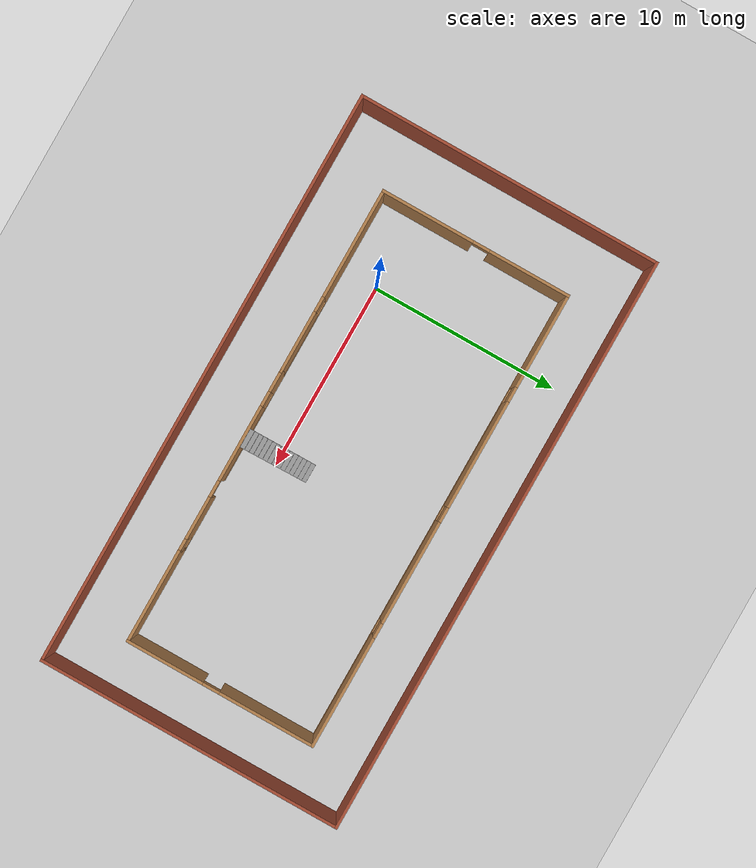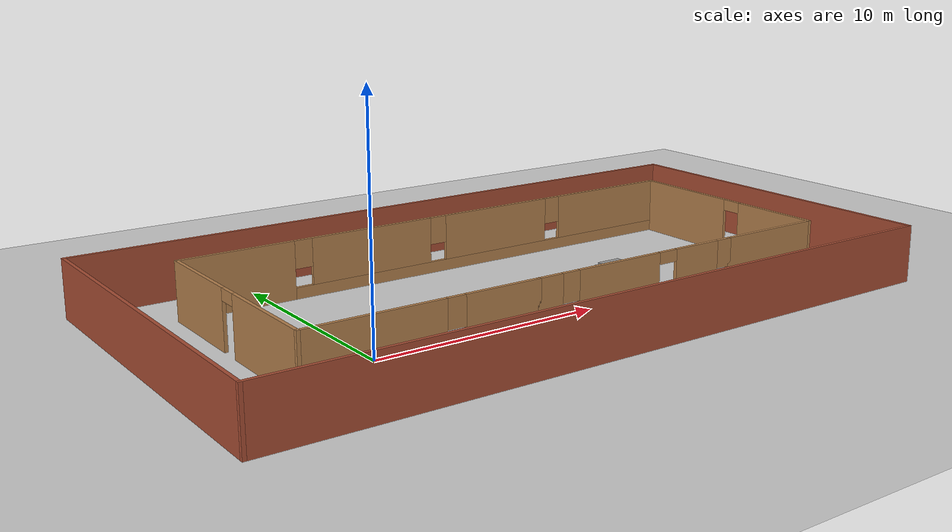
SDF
<sdf version="1.7">
 <world name="default">
  <light name="sun" type="directional">
   <pose>0 0 10 0 -0 0</pose>
   <diffuse>0.8 0.8 0.8 1</diffuse>
   <specular>0.2 0.2 0.2 1</specular>
   <attenuation>
    <range>1000</range>
    <constant>0.9</constant>
    <linear>0.01</linear>
    <quadratic>0.001</quadratic>
   </attenuation>
   <direction>-0.5 0.1 -0.9</direction>
   <spot><inner_angle>0</inner_angle><outer_angle>0</outer_angle><falloff>0</falloff></spot>
  </light>
  <model name="ground_plane">
   <static>1</static>
   <link name="link">
    <collision name="collision">
     <geometry><plane><normal>0 0 1</normal><size>100 100</size></plane></geometry>
     <surface><friction><ode><mu>100</mu><mu2>50</mu2></ode></friction></surface>
    </collision>
    <visual name="visual">
     <cast_shadows>0</cast_shadows>
     <geometry><plane><normal>0 0 1</normal><size>100 100</size></plane></geometry>
     <material>
      <script><uri>file://media/materials/scripts/gazebo.material</uri><name>Gazebo/Grey</name></script>
     </material>
    </visual>
   </link>
  </model>
  <gravity>0 0 -9.8</gravity>
  <magnetic_field>6e-06 2.3e-05 -4.2e-05</magnetic_field>
  <atmosphere type="adiabatic"/>
  <physics type="ode">
   <max_step_size>0.001</max_step_size>
   <real_time_factor>1</real_time_factor>
   <real_time_update_rate>1000</real_time_update_rate>
  </physics>
  <scene><ambient>0.4 0.4 0.4 1</ambient><background>0.7 0.7 0.7 1</background><shadows>1</shadows></scene>
  <spherical_coordinates>
   <surface_model>EARTH_WGS84</surface_model>
   <latitude_deg>0</latitude_deg>
   <longitude_deg>0</longitude_deg>
   <elevation>0</elevation>
   <heading_deg>0</heading_deg>
  </spherical_coordinates>
  <model name="fastrlap">
   <pose>8.08095 3.05105 0 0 -0 0</pose>
   <link name="Stairs_1">
    <visual name="Stairs_1_Visual_0">
     <pose>1.45814 -1.47543 0.083333 0 -0 0</pose>
     <geometry><box><size>1 0.233333 0.166667</size></box></geometry>
     <material>
      <script><uri>file://media/materials/scripts/gazebo.material</uri><name>Gazebo/Grey</name></script>
      <ambient>1 1 1 1</ambient>
     </material>
     <meta><layer>0</layer></meta>
    </visual>
    <collision name="Stairs_1_Collision_0">
     <geometry><box><size>1 0.233333 0.166667</size></box></geometry>
     <pose>1.45814 -1.47543 0.083333 0 -0 0</pose>
    </collision>
    <visual name="Stairs_1_Visual_1">
     <pose>1.45814 -1.70876 0.25 0 -0 0</pose>
     <geometry><box><size>1 0.233333 0.166667</size></box></geometry>
     <material>
      <script><uri>file://media/materials/scripts/gazebo.material</uri><name>Gazebo/Grey</name></script>
      <ambient>1 1 1 1</ambient>
     </material>
     <meta><layer>0</layer></meta>
    </visual>
    <collision name="Stairs_1_Collision_1">
     <geometry><box><size>1 0.233333 0.166667</size></box></geometry>
     <pose>1.45814 -1.70876 0.25 0 -0 0</pose>
    </collision>
    <visual name="Stairs_1_Visual_2">
     <pose>1.45814 -1.9421 0.416667 0 -0 0</pose>
     <geometry><box><size>1 0.233333 0.166667</size></box></geometry>
     <material>
      <script><uri>file://media/materials/scripts/gazebo.material</uri><name>Gazebo/Grey</name></script>
      <ambient>1 1 1 1</ambient>
     </material>
     <meta><layer>0</layer></meta>
    </visual>
    <collision name="Stairs_1_Collision_2">
     <geometry><box><size>1 0.233333 0.166667</size></box></geometry>
     <pose>1.45814 -1.9421 0.416667 0 -0 0</pose>
    </collision>
    <visual name="Stairs_1_Visual_3">
     <pose>1.45814 -2.17543 0.583333 0 -0 0</pose>
     <geometry><box><size>1 0.233333 0.166667</size></box></geometry>
     <material>
      <script><uri>file://media/materials/scripts/gazebo.material</uri><name>Gazebo/Grey</name></script>
      <ambient>1 1 1 1</ambient>
     </material>
     <meta><layer>0</layer></meta>
    </visual>
    <collision name="Stairs_1_Collision_3">
     <geometry><box><size>1 0.233333 0.166667</size></box></geometry>
     <pose>1.45814 -2.17543 0.583333 0 -0 0</pose>
    </collision>
    <visual name="Stairs_1_Visual_4">
     <pose>1.45814 -2.40876 0.75 0 -0 0</pose>
     <geometry><box><size>1 0.233333 0.166667</size></box></geometry>
     <material>
      <script><uri>file://media/materials/scripts/gazebo.material</uri><name>Gazebo/Grey</name></script>
      <ambient>1 1 1 1</ambient>
     </material>
     <meta><layer>0</layer></meta>
    </visual>
    <collision name="Stairs_1_Collision_4">
     <geometry><box><size>1 0.233333 0.166667</size></box></geometry>
     <pose>1.45814 -2.40876 0.75 0 -0 0</pose>
    </collision>
    <visual name="Stairs_1_Visual_5">
     <pose>1.45814 -2.6421 0.916667 0 -0 0</pose>
     <geometry><box><size>1 0.233333 0.166667</size></box></geometry>
     <material>
      <script><uri>file://media/materials/scripts/gazebo.material</uri><name>Gazebo/Grey</name></script>
      <ambient>1 1 1 1</ambient>
     </material>
     <meta><layer>0</layer></meta>
    </visual>
    <collision name="Stairs_1_Collision_5">
     <geometry><box><size>1 0.233333 0.166667</size></box></geometry>
     <pose>1.45814 -2.6421 0.916667 0 -0 0</pose>
    </collision>
    <visual name="Stairs_1_Visual_6">
     <pose>1.45814 -2.87543 1.08333 0 -0 0</pose>
     <geometry><box><size>1 0.233333 0.166667</size></box></geometry>
     <material>
      <script><uri>file://media/materials/scripts/gazebo.material</uri><name>Gazebo/Grey</name></script>
      <ambient>1 1 1 1</ambient>
     </material>
     <meta><layer>0</layer></meta>
    </visual>
    <collision name="Stairs_1_Collision_6">
     <geometry><box><size>1 0.233333 0.166667</size></box></geometry>
     <pose>1.45814 -2.87543 1.08333 0 -0 0</pose>
    </collision>
    <visual name="Stairs_1_Visual_7">
     <pose>1.45814 -3.10876 1.25 0 -0 0</pose>
     <geometry><box><size>1 0.233333 0.166667</size></box></geometry>
     <material>
      <script><uri>file://media/materials/scripts/gazebo.material</uri><name>Gazebo/Grey</name></script>
      <ambient>1 1 1 1</ambient>
     </material>
     <meta><layer>0</layer></meta>
    </visual>
    <collision name="Stairs_1_Collision_7">
     <geometry><box><size>1 0.233333 0.166667</size></box></geometry>
     <pose>1.45814 -3.10876 1.25 0 -0 0</pose>
    </collision>
    <visual name="Stairs_1_Visual_8">
     <pose>1.45814 -3.3421 1.41667 0 -0 0</pose>
     <geometry><box><size>1 0.233333 0.166667</size></box></geometry>
     <material>
      <script><uri>file://media/materials/scripts/gazebo.material</uri><name>Gazebo/Grey</name></script>
      <ambient>1 1 1 1</ambient>
     </material>
     <meta><layer>0</layer></meta>
    </visual>
    <collision name="Stairs_1_Collision_8">
     <geometry><box><size>1 0.233333 0.166667</size></box></geometry>
     <pose>1.45814 -3.3421 1.41667 0 -0 0</pose>
    </collision>
    <visual name="Stairs_1_Visual_9">
     <pose>1.45814 -3.57543 1.58333 0 -0 0</pose>
     <geometry><box><size>1 0.233333 0.166667</size></box></geometry>
     <material>
      <script><uri>file://media/materials/scripts/gazebo.material</uri><name>Gazebo/Grey</name></script>
      <ambient>1 1 1 1</ambient>
     </material>
     <meta><layer>0</layer></meta>
    </visual>
    <collision name="Stairs_1_Collision_9">
     <geometry><box><size>1 0.233333 0.166667</size></box></geometry>
     <pose>1.45814 -3.57543 1.58333 0 -0 0</pose>
    </collision>
    <visual name="Stairs_1_Visual_10">
     <pose>1.45814 -3.80876 1.75 0 -0 0</pose>
     <geometry><box><size>1 0.233333 0.166667</size></box></geometry>
     <material>
      <script><uri>file://media/materials/scripts/gazebo.material</uri><name>Gazebo/Grey</name></script>
      <ambient>1 1 1 1</ambient>
     </material>
     <meta><layer>0</layer></meta>
    </visual>
    <collision name="Stairs_1_Collision_10">
     <geometry><box><size>1 0.233333 0.166667</size></box></geometry>
     <pose>1.45814 -3.80876 1.75 0 -0 0</pose>
    </collision>
    <visual name="Stairs_1_Visual_11">
     <pose>1.45814 -4.0421 1.91667 0 -0 0</pose>
     <geometry><box><size>1 0.233333 0.166667</size></box></geometry>
     <material>
      <script><uri>file://media/materials/scripts/gazebo.material</uri><name>Gazebo/Grey</name></script>
      <ambient>1 1 1 1</ambient>
     </material>
     <meta><layer>0</layer></meta>
    </visual>
    <collision name="Stairs_1_Collision_11">
     <geometry><box><size>1 0.233333 0.166667</size></box></geometry>
     <pose>1.45814 -4.0421 1.91667 0 -0 0</pose>
    </collision>
    <visual name="Stairs_1_Visual_12">
     <pose>1.45814 -4.27543 2.08333 0 -0 0</pose>
     <geometry><box><size>1 0.233333 0.166667</size></box></geometry>
     <material>
      <script><uri>file://media/materials/scripts/gazebo.material</uri><name>Gazebo/Grey</name></script>
      <ambient>1 1 1 1</ambient>
     </material>
     <meta><layer>0</layer></meta>
    </visual>
    <collision name="Stairs_1_Collision_12">
     <geometry><box><size>1 0.233333 0.166667</size></box></geometry>
     <pose>1.45814 -4.27543 2.08333 0 -0 0</pose>
    </collision>
    <visual name="Stairs_1_Visual_13">
     <pose>1.45814 -4.50876 2.25 0 -0 0</pose>
     <geometry><box><size>1 0.233333 0.166667</size></box></geometry>
     <material>
      <script><uri>file://media/materials/scripts/gazebo.material</uri><name>Gazebo/Grey</name></script>
      <ambient>1 1 1 1</ambient>
     </material>
     <meta><layer>0</layer></meta>
    </visual>
    <collision name="Stairs_1_Collision_13">
     <geometry><box><size>1 0.233333 0.166667</size></box></geometry>
     <pose>1.45814 -4.50876 2.25 0 -0 0</pose>
    </collision>
    <visual name="Stairs_1_Visual_14">
     <pose>1.45814 -4.7421 2.41667 0 -0 0</pose>
     <geometry><box><size>1 0.233333 0.166667</size></box></geometry>
     <material>
      <script><uri>file://media/materials/scripts/gazebo.material</uri><name>Gazebo/Grey</name></script>
      <ambient>1 1 1 1</ambient>
     </material>
     <meta><layer>0</layer></meta>
    </visual>
    <collision name="Stairs_1_Collision_14">
     <geometry><box><size>1 0.233333 0.166667</size></box></geometry>
     <pose>1.45814 -4.7421 2.41667 0 -0 0</pose>
    </collision>
   </link>
   <link name="Wall_11">
    <pose>-11.9917 0.106405 0 0 -0 1.5708</pose>
    <visual name="Wall_11_Visual_0">
     <pose>-2.64154 0 1.25 0 -0 0</pose>
     <geometry><box><size>4.96692 0.15 2.5</size></box></geometry>
     <material>
      <script><uri>file://media/materials/scripts/gazebo.material</uri><name>Gazebo/Wood</name></script>
      <ambient>1 1 1 1</ambient>
     </material>
     <meta><layer>0</layer></meta>
    </visual>
    <collision name="Wall_11_Collision_0">
     <geometry><box><size>4.96692 0.15 2.5</size></box></geometry>
     <pose>-2.64154 0 1.25 0 -0 0</pose>
    </collision>
    <visual name="Wall_11_Visual_1">
     <pose>2.93346 0 1.25 0 -0 0</pose>
     <geometry><box><size>4.38308 0.15 2.5</size></box></geometry>
     <material>
      <script><uri>file://media/materials/scripts/gazebo.material</uri><name>Gazebo/Wood</name></script>
      <ambient>1 1 1 1</ambient>
     </material>
     <meta><layer>0</layer></meta>
    </visual>
    <collision name="Wall_11_Collision_1">
     <geometry><box><size>4.38308 0.15 2.5</size></box></geometry>
     <pose>2.93346 0 1.25 0 -0 0</pose>
    </collision>
    <visual name="Wall_11_Visual_2">
     <pose>0.291921 0 2.25 0 -0 0</pose>
     <geometry><box><size>0.9 0.15 0.5</size></box></geometry>
     <material>
      <script><uri>file://media/materials/scripts/gazebo.material</uri><name>Gazebo/Wood</name></script>
      <ambient>1 1 1 1</ambient>
     </material>
     <meta><layer>0</layer></meta>
    </visual>
    <collision name="Wall_11_Collision_2">
     <geometry><box><size>0.9 0.15 0.5</size></box></geometry>
     <pose>0.291921 0 2.25 0 -0 0</pose>
    </collision>
   </link>
   <link name="Wall_16">
    <pose>0.308286 5.15641 0 0 -0 0</pose>
    <visual name="Wall_16_Visual_0">
     <pose>-9.84265 0 1.25 0 -0 0</pose>
     <geometry><box><size>5.0647 0.15 2.5</size></box></geometry>
     <material>
      <script><uri>file://media/materials/scripts/gazebo.material</uri><name>Gazebo/Wood</name></script>
      <ambient>1 1 1 1</ambient>
     </material>
     <meta><layer>0</layer></meta>
    </visual>
    <collision name="Wall_16_Collision_0">
     <geometry><box><size>5.0647 0.15 2.5</size></box></geometry>
     <pose>-9.84265 0 1.25 0 -0 0</pose>
    </collision>
    <visual name="Wall_16_Visual_1">
     <pose>2.53235 0 0.25 0 -0 0</pose>
     <geometry><box><size>19.6853 0.15 0.5</size></box></geometry>
     <material>
      <script><uri>file://media/materials/scripts/gazebo.material</uri><name>Gazebo/Wood</name></script>
      <ambient>1 1 1 1</ambient>
     </material>
     <meta><layer>0</layer></meta>
    </visual>
    <collision name="Wall_16_Collision_1">
     <geometry><box><size>19.6853 0.15 0.5</size></box></geometry>
     <pose>2.53235 0 0.25 0 -0 0</pose>
    </collision>
    <visual name="Wall_16_Visual_2">
     <pose>-3.61856 0 1.5 0 -0 0</pose>
     <geometry><box><size>5.78348 0.15 2</size></box></geometry>
     <material>
      <script><uri>file://media/materials/scripts/gazebo.material</uri><name>Gazebo/Wood</name></script>
      <ambient>1 1 1 1</ambient>
     </material>
     <meta><layer>0</layer></meta>
    </visual>
    <collision name="Wall_16_Collision_2">
     <geometry><box><size>5.78348 0.15 2</size></box></geometry>
     <pose>-3.61856 0 1.5 0 -0 0</pose>
    </collision>
    <visual name="Wall_16_Visual_3">
     <pose>2.84187 0 1.5 0 -0 0</pose>
     <geometry><box><size>5.53737 0.15 2</size></box></geometry>
     <material>
      <script><uri>file://media/materials/scripts/gazebo.material</uri><name>Gazebo/Wood</name></script>
      <ambient>1 1 1 1</ambient>
     </material>
     <meta><layer>0</layer></meta>
    </visual>
    <collision name="Wall_16_Collision_3">
     <geometry><box><size>5.53737 0.15 2</size></box></geometry>
     <pose>2.84187 0 1.5 0 -0 0</pose>
    </collision>
    <visual name="Wall_16_Visual_4">
     <pose>9.39278 0 1.5 0 -0 0</pose>
     <geometry><box><size>5.96445 0.15 2</size></box></geometry>
     <material>
      <script><uri>file://media/materials/scripts/gazebo.material</uri><name>Gazebo/Wood</name></script>
      <ambient>1 1 1 1</ambient>
     </material>
     <meta><layer>0</layer></meta>
    </visual>
    <collision name="Wall_16_Collision_4">
     <geometry><box><size>5.96445 0.15 2</size></box></geometry>
     <pose>9.39278 0 1.5 0 -0 0</pose>
    </collision>
    <visual name="Wall_16_Visual_5">
     <pose>-6.9103 0 1.9 0 -0 0</pose>
     <geometry><box><size>0.8 0.15 1.2</size></box></geometry>
     <material>
      <script><uri>file://media/materials/scripts/gazebo.material</uri><name>Gazebo/Wood</name></script>
      <ambient>1 1 1 1</ambient>
     </material>
     <meta><layer>0</layer></meta>
    </visual>
    <collision name="Wall_16_Collision_5">
     <geometry><box><size>0.8 0.15 1.2</size></box></geometry>
     <pose>-6.9103 0 1.9 0 -0 0</pose>
    </collision>
    <visual name="Wall_16_Visual_6">
     <pose>-0.326818 0 1.9 0 -0 0</pose>
     <geometry><box><size>0.8 0.15 1.2</size></box></geometry>
     <material>
      <script><uri>file://media/materials/scripts/gazebo.material</uri><name>Gazebo/Wood</name></script>
      <ambient>1 1 1 1</ambient>
     </material>
     <meta><layer>0</layer></meta>
    </visual>
    <collision name="Wall_16_Collision_6">
     <geometry><box><size>0.8 0.15 1.2</size></box></geometry>
     <pose>-0.326818 0 1.9 0 -0 0</pose>
    </collision>
    <visual name="Wall_16_Visual_7">
     <pose>6.01055 0 1.9 0 -0 0</pose>
     <geometry><box><size>0.8 0.15 1.2</size></box></geometry>
     <material>
      <script><uri>file://media/materials/scripts/gazebo.material</uri><name>Gazebo/Wood</name></script>
      <ambient>1 1 1 1</ambient>
     </material>
     <meta><layer>0</layer></meta>
    </visual>
    <collision name="Wall_16_Collision_7">
     <geometry><box><size>0.8 0.15 1.2</size></box></geometry>
     <pose>6.01055 0 1.9 0 -0 0</pose>
    </collision>
   </link>
   <link name="Wall_17">
    <pose>12.6083 0.106405 0 0 -0 -1.5708</pose>
    <visual name="Wall_17_Visual_0">
     <pose>-2.53353 0 1.25 0 -0 0</pose>
     <geometry><box><size>5.18294 0.15 2.5</size></box></geometry>
     <material>
      <script><uri>file://media/materials/scripts/gazebo.material</uri><name>Gazebo/Wood</name></script>
      <ambient>1 1 1 1</ambient>
     </material>
     <meta><layer>0</layer></meta>
    </visual>
    <collision name="Wall_17_Collision_0">
     <geometry><box><size>5.18294 0.15 2.5</size></box></geometry>
     <pose>-2.53353 0 1.25 0 -0 0</pose>
    </collision>
    <visual name="Wall_17_Visual_1">
     <pose>3.04147 0 1.25 0 -0 0</pose>
     <geometry><box><size>4.16706 0.15 2.5</size></box></geometry>
     <material>
      <script><uri>file://media/materials/scripts/gazebo.material</uri><name>Gazebo/Wood</name></script>
      <ambient>1 1 1 1</ambient>
     </material>
     <meta><layer>0</layer></meta>
    </visual>
    <collision name="Wall_17_Collision_1">
     <geometry><box><size>4.16706 0.15 2.5</size></box></geometry>
     <pose>3.04147 0 1.25 0 -0 0</pose>
    </collision>
    <visual name="Wall_17_Visual_2">
     <pose>0.507941 0 2.25 0 -0 0</pose>
     <geometry><box><size>0.9 0.15 0.5</size></box></geometry>
     <material>
      <script><uri>file://media/materials/scripts/gazebo.material</uri><name>Gazebo/Wood</name></script>
      <ambient>1 1 1 1</ambient>
     </material>
     <meta><layer>0</layer></meta>
    </visual>
    <collision name="Wall_17_Collision_2">
     <geometry><box><size>0.9 0.15 0.5</size></box></geometry>
     <pose>0.507941 0 2.25 0 -0 0</pose>
    </collision>
   </link>
   <link name="Wall_20">
    <collision name="Wall_20_Collision">
     <geometry><box><size>31 0.15 2.5</size></box></geometry>
     <pose>0 0 1.25 0 -0 0</pose>
    </collision>
    <visual name="Wall_20_Visual">
     <pose>0 0 1.25 0 -0 0</pose>
     <geometry><box><size>31 0.15 2.5</size></box></geometry>
     <material>
      <script><uri>file://media/materials/scripts/gazebo.material</uri><name>Gazebo/Bricks</name></script>
      <ambient>1 1 1 1</ambient>
     </material>
     <meta><layer>0</layer></meta>
    </visual>
    <pose>0 8.05 0 0 -0 0</pose>
   </link>
   <link name="Wall_22">
    <collision name="Wall_22_Collision">
     <geometry><box><size>16.25 0.15 2.5</size></box></geometry>
     <pose>0 0 1.25 0 -0 0</pose>
    </collision>
    <visual name="Wall_22_Visual">
     <pose>0 0 1.25 0 -0 0</pose>
     <geometry><box><size>16.25 0.15 2.5</size></box></geometry>
     <material>
      <script><uri>file://media/materials/scripts/gazebo.material</uri><name>Gazebo/Bricks</name></script>
      <ambient>1 1 1 1</ambient>
     </material>
     <meta><layer>0</layer></meta>
    </visual>
    <pose>15.425 -0 0 0 -0 -1.5708</pose>
   </link>
   <link name="Wall_23">
    <collision name="Wall_23_Collision">
     <geometry><box><size>31 0.15 2.5</size></box></geometry>
     <pose>0 0 1.25 0 -0 0</pose>
    </collision>
    <visual name="Wall_23_Visual">
     <pose>0 0 1.25 0 -0 0</pose>
     <geometry><box><size>31 0.15 2.5</size></box></geometry>
     <material>
      <script><uri>file://media/materials/scripts/gazebo.material</uri><name>Gazebo/Bricks</name></script>
      <ambient>1 1 1 1</ambient>
     </material>
     <meta><layer>0</layer></meta>
    </visual>
    <pose>0 -8.05 0 0 -0 3.14159</pose>
   </link>
   <link name="Wall_24">
    <collision name="Wall_24_Collision">
     <geometry><box><size>16.25 0.15 2.5</size></box></geometry>
     <pose>0 0 1.25 0 -0 0</pose>
    </collision>
    <visual name="Wall_24_Visual">
     <pose>0 0 1.25 0 -0 0</pose>
     <geometry><box><size>16.25 0.15 2.5</size></box></geometry>
     <material>
      <script><uri>file://media/materials/scripts/gazebo.material</uri><name>Gazebo/Bricks</name></script>
      <ambient>1 1 1 1</ambient>
     </material>
     <meta><layer>0</layer></meta>
    </visual>
    <pose>-15.425 -0 0 0 -0 1.5708</pose>
   </link>
   <link name="Wall_5">
    <pose>-7.06671 -4.94359 0 0 -0 0</pose>
    <visual name="Wall_5_Visual_0">
     <pose>-2.06772 0 1.25 0 -0 0</pose>
     <geometry><box><size>5.86456 0.15 2.5</size></box></geometry>
     <material>
      <script><uri>file://media/materials/scripts/gazebo.material</uri><name>Gazebo/Wood</name></script>
      <ambient>1 1 1 1</ambient>
     </material>
     <meta><layer>0</layer></meta>
    </visual>
    <collision name="Wall_5_Collision_0">
     <geometry><box><size>5.86456 0.15 2.5</size></box></geometry>
     <pose>-2.06772 0 1.25 0 -0 0</pose>
    </collision>
    <visual name="Wall_5_Visual_1">
     <pose>2.93228 0 0.25 0 -0 0</pose>
     <geometry><box><size>4.13544 0.15 0.5</size></box></geometry>
     <material>
      <script><uri>file://media/materials/scripts/gazebo.material</uri><name>Gazebo/Wood</name></script>
      <ambient>1 1 1 1</ambient>
     </material>
     <meta><layer>0</layer></meta>
    </visual>
    <collision name="Wall_5_Collision_1">
     <geometry><box><size>4.13544 0.15 0.5</size></box></geometry>
     <pose>2.93228 0 0.25 0 -0 0</pose>
    </collision>
    <visual name="Wall_5_Visual_2">
     <pose>3.33228 0 1.5 0 -0 0</pose>
     <geometry><box><size>3.33544 0.15 2</size></box></geometry>
     <material>
      <script><uri>file://media/materials/scripts/gazebo.material</uri><name>Gazebo/Wood</name></script>
      <ambient>1 1 1 1</ambient>
     </material>
     <meta><layer>0</layer></meta>
    </visual>
    <collision name="Wall_5_Collision_2">
     <geometry><box><size>3.33544 0.15 2</size></box></geometry>
     <pose>3.33228 0 1.5 0 -0 0</pose>
    </collision>
    <visual name="Wall_5_Visual_3">
     <pose>1.26456 0 1.9 0 -0 0</pose>
     <geometry><box><size>0.8 0.15 1.2</size></box></geometry>
     <material>
      <script><uri>file://media/materials/scripts/gazebo.material</uri><name>Gazebo/Wood</name></script>
      <ambient>1 1 1 1</ambient>
     </material>
     <meta><layer>0</layer></meta>
    </visual>
    <collision name="Wall_5_Collision_3">
     <geometry><box><size>0.8 0.15 1.2</size></box></geometry>
     <pose>1.26456 0 1.9 0 -0 0</pose>
    </collision>
   </link>
   <link name="Wall_7">
    <pose>2.78329 -4.94359 0 0 -0 0</pose>
    <visual name="Wall_7_Visual_0">
     <pose>-4.40855 0 1.25 0 -0 0</pose>
     <geometry><box><size>1.1829 0.15 2.5</size></box></geometry>
     <material>
      <script><uri>file://media/materials/scripts/gazebo.material</uri><name>Gazebo/Wood</name></script>
      <ambient>1 1 1 1</ambient>
     </material>
     <meta><layer>0</layer></meta>
    </visual>
    <collision name="Wall_7_Collision_0">
     <geometry><box><size>1.1829 0.15 2.5</size></box></geometry>
     <pose>-4.40855 0 1.25 0 -0 0</pose>
    </collision>
    <visual name="Wall_7_Visual_1">
     <pose>3.09909 0 1.25 0 -0 0</pose>
     <geometry><box><size>2.28792 0.15 2.5</size></box></geometry>
     <material>
      <script><uri>file://media/materials/scripts/gazebo.material</uri><name>Gazebo/Wood</name></script>
      <ambient>1 1 1 1</ambient>
     </material>
     <meta><layer>0</layer></meta>
    </visual>
    <collision name="Wall_7_Collision_1">
     <geometry><box><size>2.28792 0.15 2.5</size></box></geometry>
     <pose>3.09909 0 1.25 0 -0 0</pose>
    </collision>
    <visual name="Wall_7_Visual_2">
     <pose>-1.38098 0 0.25 0 -0 0</pose>
     <geometry><box><size>4.87223 0.15 0.5</size></box></geometry>
     <material>
      <script><uri>file://media/materials/scripts/gazebo.material</uri><name>Gazebo/Wood</name></script>
      <ambient>1 1 1 1</ambient>
     </material>
     <meta><layer>0</layer></meta>
    </visual>
    <collision name="Wall_7_Collision_2">
     <geometry><box><size>4.87223 0.15 0.5</size></box></geometry>
     <pose>-1.38098 0 0.25 0 -0 0</pose>
    </collision>
    <visual name="Wall_7_Visual_3">
     <pose>4.62153 0 0.25 0 -0 0</pose>
     <geometry><box><size>0.756945 0.15 0.5</size></box></geometry>
     <material>
      <script><uri>file://media/materials/scripts/gazebo.material</uri><name>Gazebo/Wood</name></script>
      <ambient>1 1 1 1</ambient>
     </material>
     <meta><layer>0</layer></meta>
    </visual>
    <collision name="Wall_7_Collision_3">
     <geometry><box><size>0.756945 0.15 0.5</size></box></geometry>
     <pose>4.62153 0 0.25 0 -0 0</pose>
    </collision>
    <visual name="Wall_7_Visual_4">
     <pose>-0.980982 0 1.5 0 -0 0</pose>
     <geometry><box><size>4.07223 0.15 2</size></box></geometry>
     <material>
      <script><uri>file://media/materials/scripts/gazebo.material</uri><name>Gazebo/Wood</name></script>
      <ambient>1 1 1 1</ambient>
     </material>
     <meta><layer>0</layer></meta>
    </visual>
    <collision name="Wall_7_Collision_4">
     <geometry><box><size>4.07223 0.15 2</size></box></geometry>
     <pose>-0.980982 0 1.5 0 -0 0</pose>
    </collision>
    <visual name="Wall_7_Visual_5">
     <pose>-0.980982 0 1.5 0 -0 0</pose>
     <geometry><box><size>4.07223 0.15 2</size></box></geometry>
     <material>
      <script><uri>file://media/materials/scripts/gazebo.material</uri><name>Gazebo/Wood</name></script>
      <ambient>1 1 1 1</ambient>
     </material>
     <meta><layer>0</layer></meta>
    </visual>
    <collision name="Wall_7_Collision_5">
     <geometry><box><size>4.07223 0.15 2</size></box></geometry>
     <pose>-0.980982 0 1.5 0 -0 0</pose>
    </collision>
    <visual name="Wall_7_Visual_6">
     <pose>-3.4171 0 1.9 0 -0 0</pose>
     <geometry><box><size>0.8 0.15 1.2</size></box></geometry>
     <material>
      <script><uri>file://media/materials/scripts/gazebo.material</uri><name>Gazebo/Wood</name></script>
      <ambient>1 1 1 1</ambient>
     </material>
     <meta><layer>0</layer></meta>
    </visual>
    <collision name="Wall_7_Collision_6">
     <geometry><box><size>0.8 0.15 1.2</size></box></geometry>
     <pose>-3.4171 0 1.9 0 -0 0</pose>
    </collision>
    <visual name="Wall_7_Visual_7">
     <pose>4.62153 0 1.9 0 -0 0</pose>
     <geometry><box><size>0.756945 0.15 1.2</size></box></geometry>
     <material>
      <script><uri>file://media/materials/scripts/gazebo.material</uri><name>Gazebo/Wood</name></script>
      <ambient>1 1 1 1</ambient>
     </material>
     <meta><layer>0</layer></meta>
    </visual>
    <collision name="Wall_7_Collision_7">
     <geometry><box><size>0.756945 0.15 1.2</size></box></geometry>
     <pose>4.62153 0 1.9 0 -0 0</pose>
    </collision>
    <visual name="Wall_7_Visual_8">
     <pose>1.50513 0 2.25 0 -0 0</pose>
     <geometry><box><size>0.9 0.15 0.5</size></box></geometry>
     <material>
      <script><uri>file://media/materials/scripts/gazebo.material</uri><name>Gazebo/Wood</name></script>
      <ambient>1 1 1 1</ambient>
     </material>
     <meta><layer>0</layer></meta>
    </visual>
    <collision name="Wall_7_Collision_8">
     <geometry><box><size>0.9 0.15 0.5</size></box></geometry>
     <pose>1.50513 0 2.25 0 -0 0</pose>
    </collision>
    <visual name="Wall_7_Visual_9">
     <pose>1.50513 0 2.25 0 -0 0</pose>
     <geometry><box><size>0.9 0.15 0.5</size></box></geometry>
     <material>
      <script><uri>file://media/materials/scripts/gazebo.material</uri><name>Gazebo/Wood</name></script>
      <ambient>1 1 1 1</ambient>
     </material>
     <meta><layer>0</layer></meta>
    </visual>
    <collision name="Wall_7_Collision_9">
     <geometry><box><size>0.9 0.15 0.5</size></box></geometry>
     <pose>1.50513 0 2.25 0 -0 0</pose>
    </collision>
   </link>
   <link name="Wall_9">
    <collision name="Wall_9_Collision">
     <geometry><box><size>5 0.15 2.5</size></box></geometry>
     <pose>0 0 1.25 0 -0 0</pose>
    </collision>
    <visual name="Wall_9_Visual">
     <pose>0 0 1.25 0 -0 0</pose>
     <geometry><box><size>5 0.15 2.5</size></box></geometry>
     <material>
      <script><uri>file://media/materials/scripts/gazebo.material</uri><name>Gazebo/Wood</name></script>
      <ambient>1 1 1 1</ambient>
     </material>
     <meta><layer>0</layer></meta>
    </visual>
    <pose>10.1333 -4.94359 0 0 -0 0</pose>
   </link>
   <static>1</static>
  </model>
 </world>
</sdf>
